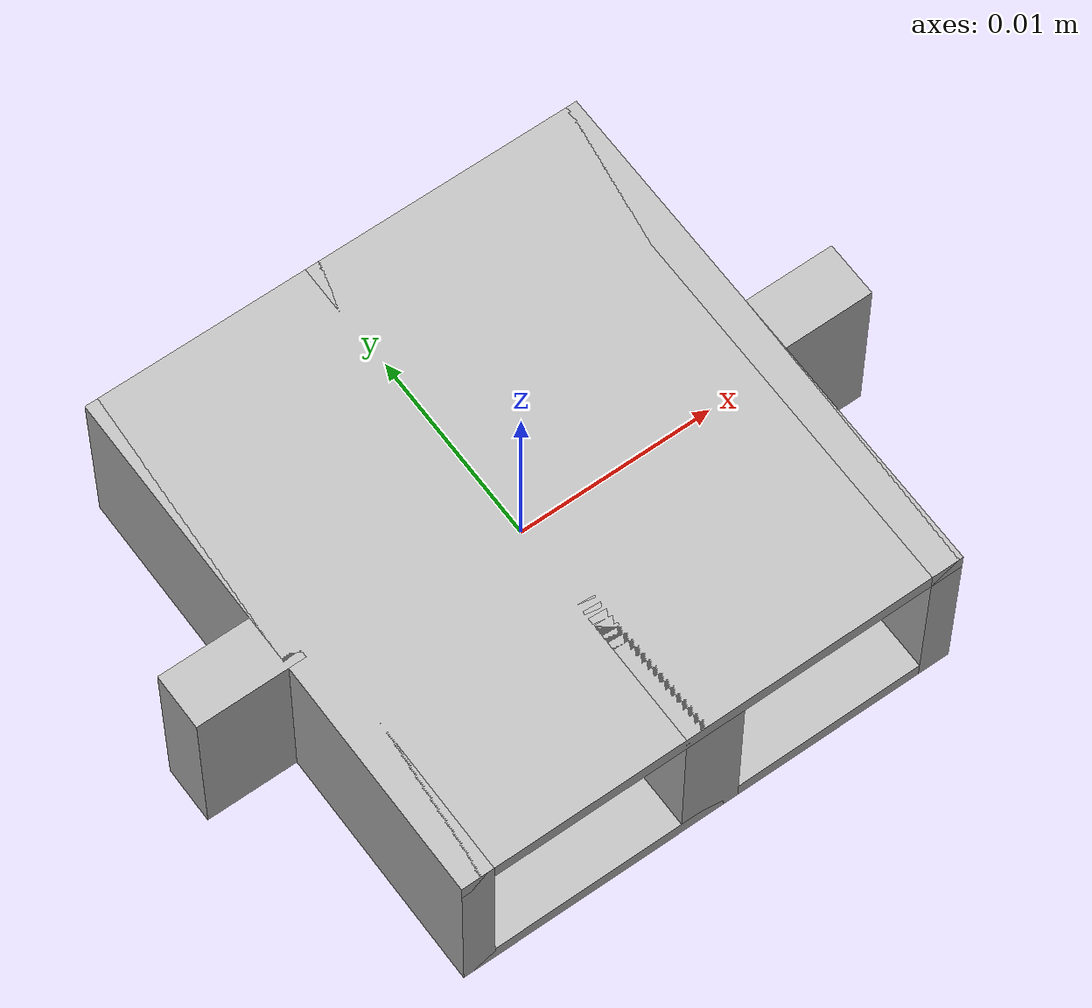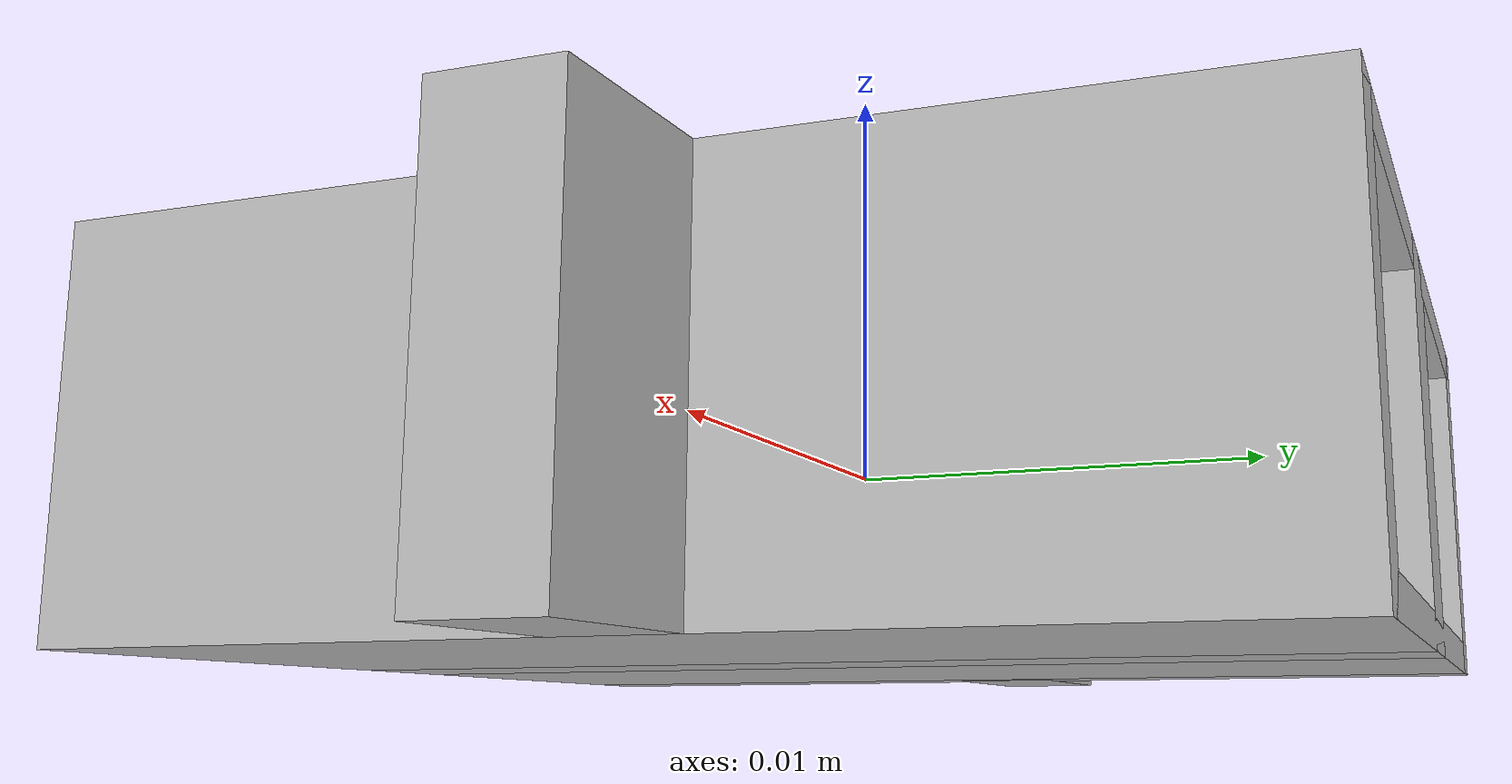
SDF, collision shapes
<?xml version="1.0" ?>
<sdf version="1.9">
  <model name="SC Port">
    <link name="sc_port_link">
      <visual name="sc_port_visual">
        <geometry>
          <mesh>
            <uri>sc_port_visual.glb</uri>
          </mesh>
        </geometry>
      </visual>
      <collision name="cube_collider_box">
        <pose>0.012013 0.0 0.0 0.0 0.0 0.0</pose>
        <geometry>
          <box>
            <size>0.001625 0.0273 0.0093</size>
          </box>
        </geometry>
      </collision>
      <collision name="cube_collider_box.001">
        <pose>0.0 0.0 0.004225 0.0 0.0 0.0</pose>
        <geometry>
          <box>
            <size>0.02565 0.0273 0.00085</size>
          </box>
        </geometry>
      </collision>
      <collision name="cube_collider_box.002">
        <pose>0.0 0.0 -0.004225 0.0 0.0 0.0</pose>
        <geometry>
          <box>
            <size>0.02565 0.0273 0.00085</size>
          </box>
        </geometry>
      </collision>
      <collision name="cube_collider_box.003">
        <pose>-0.012013 0.0 0.0 0.0 0.0 0.0</pose>
        <geometry>
          <box>
            <size>0.001625 0.0273 0.0093</size>
          </box>
        </geometry>
      </collision>
      <collision name="cube_collider_box.004">
        <pose>-0.014683 0.0 0.0 0.0 0.0 0.0</pose>
        <geometry>
          <box>
            <size>0.005484 0.00285 0.0093</size>
          </box>
        </geometry>
      </collision>
      <collision name="cube_collider_box.005">
        <pose>0.014683 0.0 0.0 0.0 0.0 0.0</pose>
        <geometry>
          <box>
            <size>0.005484 0.00285 0.0093</size>
          </box>
        </geometry>
      </collision>
      <collision name="cube_collider_box.006">
        <pose>0.0 0.0 0.0 0.0 0.0 0.0</pose>
        <geometry>
          <box>
            <size>0.003 0.0273 0.0093</size>
          </box>
        </geometry>
      </collision>
    </link>
  </model>
</sdf>
